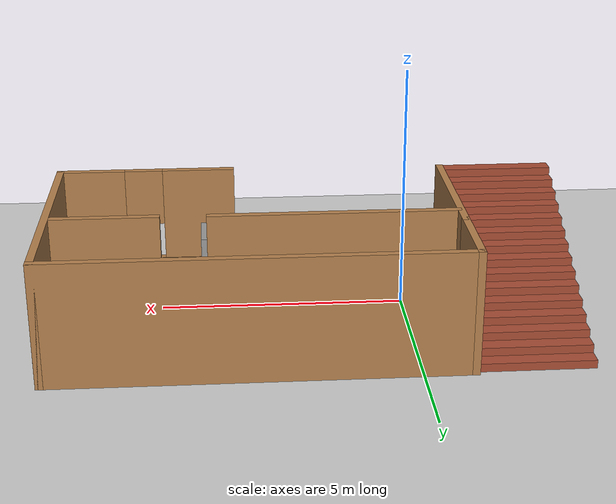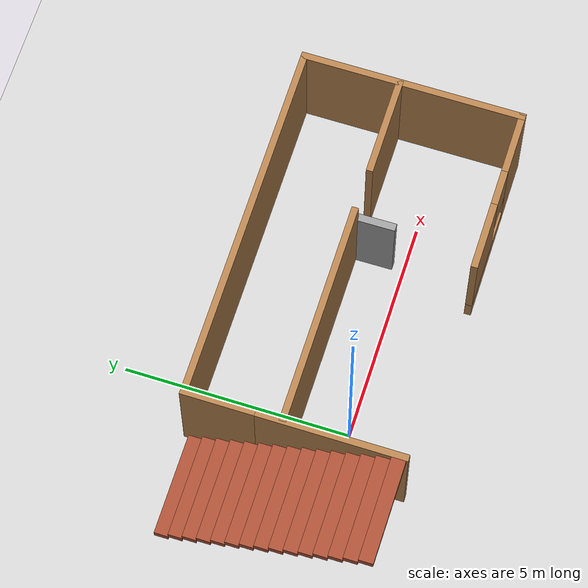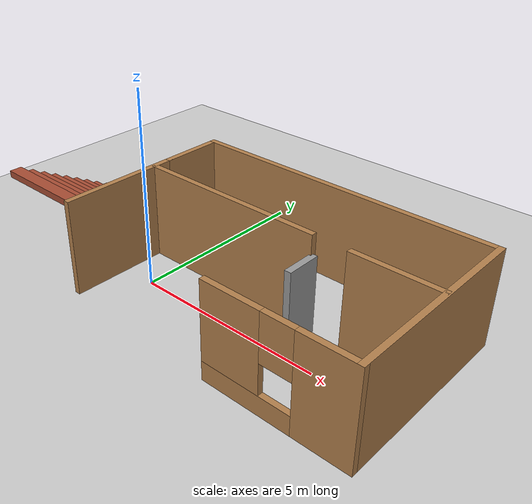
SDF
<sdf version="1.7">
 <world name="default">
  <light name="sun" type="directional">
   <pose>0 0 10 0 -0 0</pose>
   <diffuse>0.8 0.8 0.8 1</diffuse>
   <specular>0.2 0.2 0.2 1</specular>
   <attenuation>
    <range>1000</range>
    <constant>0.9</constant>
    <linear>0.01</linear>
    <quadratic>0.001</quadratic>
   </attenuation>
   <direction>-0.5 0.1 -0.9</direction>
   <spot><inner_angle>0</inner_angle><outer_angle>0</outer_angle><falloff>0</falloff></spot>
  </light>
  <model name="ground_plane">
   <static>1</static>
   <link name="link">
    <collision name="collision">
     <geometry><plane><normal>0 0 1</normal><size>100 100</size></plane></geometry>
     <surface><friction><ode><mu>100</mu><mu2>50</mu2></ode></friction></surface>
    </collision>
    <visual name="visual">
     <cast_shadows>0</cast_shadows>
     <geometry><plane><normal>0 0 1</normal><size>100 100</size></plane></geometry>
     <material>
      <script><uri>file://media/materials/scripts/gazebo.material</uri><name>Gazebo/Grey</name></script>
     </material>
    </visual>
   </link>
  </model>
  <gravity>0 0 -9.8</gravity>
  <magnetic_field>6e-06 2.3e-05 -4.2e-05</magnetic_field>
  <atmosphere type="adiabatic"/>
  <physics type="ode">
   <max_step_size>0.001</max_step_size>
   <real_time_factor>1</real_time_factor>
   <real_time_update_rate>1000</real_time_update_rate>
  </physics>
  <scene><ambient>0.4 0.4 0.4 1</ambient><background>0.7 0.7 0.7 1</background><shadows>1</shadows></scene>
  <spherical_coordinates>
   <surface_model>EARTH_WGS84</surface_model>
   <latitude_deg>0</latitude_deg>
   <longitude_deg>0</longitude_deg>
   <elevation>0</elevation>
   <heading_deg>0</heading_deg>
  </spherical_coordinates>
  <light name="user_point_light_0" type="point">
   <pose>0.317693 -1.24097 1 0 -0 0</pose>
   <diffuse>0.5 0.5 0.5 1</diffuse>
   <specular>0.1 0.1 0.1 1</specular>
   <attenuation>
    <range>20</range>
    <constant>0.5</constant>
    <linear>0.01</linear>
    <quadratic>0.001</quadratic>
   </attenuation>
   <cast_shadows>0</cast_shadows>
   <direction>0 0 -1</direction>
  </light>
  <model name="home">
   <pose>1.94437 0.835201 0 0 -0 0</pose>
   <link name="Door_0">
    <collision name="Door_0_Collision">
     <geometry><box><size>0.9 0.17 2</size></box></geometry>
     <pose>0 0 1 0 -0 0</pose>
    </collision>
    <visual name="Door_0_Visual">
     <pose>0 0 1 0 -0 0</pose>
     <geometry><box><size>0.9 0.17 2</size></box></geometry>
     <material>
      <script><uri>file://media/materials/scripts/gazebo.material</uri><name>Gazebo/Grey</name></script>
     </material>
    </visual>
    <pose>2.10333 -0.119323 0 0 -0 -1.56252</pose>
   </link>
   <link name="Stairs_0">
    <visual name="Stairs_0_Visual_0">
     <pose>-4.12466 2.2344 0.083333 0 -0 0</pose>
     <geometry><box><size>2.26233 0.313433 0.166667</size></box></geometry>
     <material>
      <script><uri>file://media/materials/scripts/gazebo.material</uri><name>Gazebo/Bricks</name></script>
      <ambient>0.435294 0.796078 0.67451 1</ambient>
     </material>
     <meta><layer>0</layer></meta>
    </visual>
    <collision name="Stairs_0_Collision_0">
     <geometry><box><size>2.26233 0.313433 0.166667</size></box></geometry>
     <pose>-4.12466 2.2344 0.083333 0 -0 0</pose>
    </collision>
    <visual name="Stairs_0_Visual_1">
     <pose>-4.12466 1.92097 0.25 0 -0 0</pose>
     <geometry><box><size>2.26233 0.313433 0.166667</size></box></geometry>
     <material>
      <script><uri>file://media/materials/scripts/gazebo.material</uri><name>Gazebo/Bricks</name></script>
      <ambient>0.435294 0.796078 0.67451 1</ambient>
     </material>
     <meta><layer>0</layer></meta>
    </visual>
    <collision name="Stairs_0_Collision_1">
     <geometry><box><size>2.26233 0.313433 0.166667</size></box></geometry>
     <pose>-4.12466 1.92097 0.25 0 -0 0</pose>
    </collision>
    <visual name="Stairs_0_Visual_2">
     <pose>-4.12466 1.60753 0.416667 0 -0 0</pose>
     <geometry><box><size>2.26233 0.313433 0.166667</size></box></geometry>
     <material>
      <script><uri>file://media/materials/scripts/gazebo.material</uri><name>Gazebo/Bricks</name></script>
      <ambient>0.435294 0.796078 0.67451 1</ambient>
     </material>
     <meta><layer>0</layer></meta>
    </visual>
    <collision name="Stairs_0_Collision_2">
     <geometry><box><size>2.26233 0.313433 0.166667</size></box></geometry>
     <pose>-4.12466 1.60753 0.416667 0 -0 0</pose>
    </collision>
    <visual name="Stairs_0_Visual_3">
     <pose>-4.12466 1.2941 0.583333 0 -0 0</pose>
     <geometry><box><size>2.26233 0.313433 0.166667</size></box></geometry>
     <material>
      <script><uri>file://media/materials/scripts/gazebo.material</uri><name>Gazebo/Bricks</name></script>
      <ambient>0.435294 0.796078 0.67451 1</ambient>
     </material>
     <meta><layer>0</layer></meta>
    </visual>
    <collision name="Stairs_0_Collision_3">
     <geometry><box><size>2.26233 0.313433 0.166667</size></box></geometry>
     <pose>-4.12466 1.2941 0.583333 0 -0 0</pose>
    </collision>
    <visual name="Stairs_0_Visual_4">
     <pose>-4.12466 0.980668 0.75 0 -0 0</pose>
     <geometry><box><size>2.26233 0.313433 0.166667</size></box></geometry>
     <material>
      <script><uri>file://media/materials/scripts/gazebo.material</uri><name>Gazebo/Bricks</name></script>
      <ambient>0.435294 0.796078 0.67451 1</ambient>
     </material>
     <meta><layer>0</layer></meta>
    </visual>
    <collision name="Stairs_0_Collision_4">
     <geometry><box><size>2.26233 0.313433 0.166667</size></box></geometry>
     <pose>-4.12466 0.980668 0.75 0 -0 0</pose>
    </collision>
    <visual name="Stairs_0_Visual_5">
     <pose>-4.12466 0.667235 0.916667 0 -0 0</pose>
     <geometry><box><size>2.26233 0.313433 0.166667</size></box></geometry>
     <material>
      <script><uri>file://media/materials/scripts/gazebo.material</uri><name>Gazebo/Bricks</name></script>
      <ambient>0.435294 0.796078 0.67451 1</ambient>
     </material>
     <meta><layer>0</layer></meta>
    </visual>
    <collision name="Stairs_0_Collision_5">
     <geometry><box><size>2.26233 0.313433 0.166667</size></box></geometry>
     <pose>-4.12466 0.667235 0.916667 0 -0 0</pose>
    </collision>
    <visual name="Stairs_0_Visual_6">
     <pose>-4.12466 0.353802 1.08333 0 -0 0</pose>
     <geometry><box><size>2.26233 0.313433 0.166667</size></box></geometry>
     <material>
      <script><uri>file://media/materials/scripts/gazebo.material</uri><name>Gazebo/Bricks</name></script>
      <ambient>0.435294 0.796078 0.67451 1</ambient>
     </material>
     <meta><layer>0</layer></meta>
    </visual>
    <collision name="Stairs_0_Collision_6">
     <geometry><box><size>2.26233 0.313433 0.166667</size></box></geometry>
     <pose>-4.12466 0.353802 1.08333 0 -0 0</pose>
    </collision>
    <visual name="Stairs_0_Visual_7">
     <pose>-4.12466 0.040369 1.25 0 -0 0</pose>
     <geometry><box><size>2.26233 0.313433 0.166667</size></box></geometry>
     <material>
      <script><uri>file://media/materials/scripts/gazebo.material</uri><name>Gazebo/Bricks</name></script>
      <ambient>0.435294 0.796078 0.67451 1</ambient>
     </material>
     <meta><layer>0</layer></meta>
    </visual>
    <collision name="Stairs_0_Collision_7">
     <geometry><box><size>2.26233 0.313433 0.166667</size></box></geometry>
     <pose>-4.12466 0.040369 1.25 0 -0 0</pose>
    </collision>
    <visual name="Stairs_0_Visual_8">
     <pose>-4.12466 -0.273063 1.41667 0 -0 0</pose>
     <geometry><box><size>2.26233 0.313433 0.166667</size></box></geometry>
     <material>
      <script><uri>file://media/materials/scripts/gazebo.material</uri><name>Gazebo/Bricks</name></script>
      <ambient>0.435294 0.796078 0.67451 1</ambient>
     </material>
     <meta><layer>0</layer></meta>
    </visual>
    <collision name="Stairs_0_Collision_8">
     <geometry><box><size>2.26233 0.313433 0.166667</size></box></geometry>
     <pose>-4.12466 -0.273063 1.41667 0 -0 0</pose>
    </collision>
    <visual name="Stairs_0_Visual_9">
     <pose>-4.12466 -0.586496 1.58333 0 -0 0</pose>
     <geometry><box><size>2.26233 0.313433 0.166667</size></box></geometry>
     <material>
      <script><uri>file://media/materials/scripts/gazebo.material</uri><name>Gazebo/Bricks</name></script>
      <ambient>0.435294 0.796078 0.67451 1</ambient>
     </material>
     <meta><layer>0</layer></meta>
    </visual>
    <collision name="Stairs_0_Collision_9">
     <geometry><box><size>2.26233 0.313433 0.166667</size></box></geometry>
     <pose>-4.12466 -0.586496 1.58333 0 -0 0</pose>
    </collision>
    <visual name="Stairs_0_Visual_10">
     <pose>-4.12466 -0.899929 1.75 0 -0 0</pose>
     <geometry><box><size>2.26233 0.313433 0.166667</size></box></geometry>
     <material>
      <script><uri>file://media/materials/scripts/gazebo.material</uri><name>Gazebo/Bricks</name></script>
      <ambient>0.435294 0.796078 0.67451 1</ambient>
     </material>
     <meta><layer>0</layer></meta>
    </visual>
    <collision name="Stairs_0_Collision_10">
     <geometry><box><size>2.26233 0.313433 0.166667</size></box></geometry>
     <pose>-4.12466 -0.899929 1.75 0 -0 0</pose>
    </collision>
    <visual name="Stairs_0_Visual_11">
     <pose>-4.12466 -1.21336 1.91667 0 -0 0</pose>
     <geometry><box><size>2.26233 0.313433 0.166667</size></box></geometry>
     <material>
      <script><uri>file://media/materials/scripts/gazebo.material</uri><name>Gazebo/Bricks</name></script>
      <ambient>0.435294 0.796078 0.67451 1</ambient>
     </material>
     <meta><layer>0</layer></meta>
    </visual>
    <collision name="Stairs_0_Collision_11">
     <geometry><box><size>2.26233 0.313433 0.166667</size></box></geometry>
     <pose>-4.12466 -1.21336 1.91667 0 -0 0</pose>
    </collision>
    <visual name="Stairs_0_Visual_12">
     <pose>-4.12466 -1.52679 2.08333 0 -0 0</pose>
     <geometry><box><size>2.26233 0.313433 0.166667</size></box></geometry>
     <material>
      <script><uri>file://media/materials/scripts/gazebo.material</uri><name>Gazebo/Bricks</name></script>
      <ambient>0.435294 0.796078 0.67451 1</ambient>
     </material>
     <meta><layer>0</layer></meta>
    </visual>
    <collision name="Stairs_0_Collision_12">
     <geometry><box><size>2.26233 0.313433 0.166667</size></box></geometry>
     <pose>-4.12466 -1.52679 2.08333 0 -0 0</pose>
    </collision>
    <visual name="Stairs_0_Visual_13">
     <pose>-4.12466 -1.84023 2.25 0 -0 0</pose>
     <geometry><box><size>2.26233 0.313433 0.166667</size></box></geometry>
     <material>
      <script><uri>file://media/materials/scripts/gazebo.material</uri><name>Gazebo/Bricks</name></script>
      <ambient>0.435294 0.796078 0.67451 1</ambient>
     </material>
     <meta><layer>0</layer></meta>
    </visual>
    <collision name="Stairs_0_Collision_13">
     <geometry><box><size>2.26233 0.313433 0.166667</size></box></geometry>
     <pose>-4.12466 -1.84023 2.25 0 -0 0</pose>
    </collision>
    <visual name="Stairs_0_Visual_14">
     <pose>-4.12466 -2.15366 2.41667 0 -0 0</pose>
     <geometry><box><size>2.26233 0.313433 0.166667</size></box></geometry>
     <material>
      <script><uri>file://media/materials/scripts/gazebo.material</uri><name>Gazebo/Bricks</name></script>
      <ambient>0.435294 0.796078 0.67451 1</ambient>
     </material>
     <meta><layer>0</layer></meta>
    </visual>
    <collision name="Stairs_0_Collision_14">
     <geometry><box><size>2.26233 0.313433 0.166667</size></box></geometry>
     <pose>-4.12466 -2.15366 2.41667 0 -0 0</pose>
    </collision>
   </link>
   <link name="Wall_0">
    <collision name="Wall_0_Collision">
     <geometry><box><size>3.25 0.15 2.5</size></box></geometry>
     <pose>0 0 1.25 0 -0 0</pose>
    </collision>
    <visual name="Wall_0_Visual">
     <pose>0 0 1.25 0 -0 0</pose>
     <geometry><box><size>3.25 0.15 2.5</size></box></geometry>
     <material>
      <script><uri>file://media/materials/scripts/gazebo.material</uri><name>Gazebo/Wood</name></script>
      <ambient>0.996078 0.47451 0.0196078 1</ambient>
     </material>
     <meta><layer>0</layer></meta>
    </visual>
    <pose>-2.91918 -0.725 0 0 -0 1.5708</pose>
   </link>
   <link name="Wall_11">
    <collision name="Wall_11_Collision">
     <geometry><box><size>5 0.15 2.5</size></box></geometry>
     <pose>0 0 1.25 0 -0 0</pose>
    </collision>
    <visual name="Wall_11_Visual">
     <pose>0 0 1.25 0 -0 0</pose>
     <geometry><box><size>5 0.15 2.5</size></box></geometry>
     <material>
      <script><uri>file://media/materials/scripts/gazebo.material</uri><name>Gazebo/Wood</name></script>
      <ambient>0.996078 0.47451 0.0196078 1</ambient>
     </material>
     <meta><layer>0</layer></meta>
    </visual>
    <pose>-0.429726 0.321731 0 0 -0 0</pose>
   </link>
   <link name="Wall_13">
    <collision name="Wall_13_Collision">
     <geometry><box><size>2.25 0.15 2.5</size></box></geometry>
     <pose>0 0 1.25 0 -0 0</pose>
    </collision>
    <visual name="Wall_13_Visual">
     <pose>0 0 1.25 0 -0 0</pose>
     <geometry><box><size>2.25 0.15 2.5</size></box></geometry>
     <material>
      <script><uri>file://media/materials/scripts/gazebo.material</uri><name>Gazebo/Wood</name></script>
      <ambient>0.996078 0.47451 0.0196078 1</ambient>
     </material>
     <meta><layer>0</layer></meta>
    </visual>
    <pose>4.09627 0.291314 0 0 -0 0</pose>
   </link>
   <link name="Wall_4">
    <collision name="Wall_4_Collision">
     <geometry><box><size>1.75 0.15 2.5</size></box></geometry>
     <pose>0 0 1.25 0 -0 0</pose>
    </collision>
    <visual name="Wall_4_Visual">
     <pose>0 0 1.25 0 -0 0</pose>
     <geometry><box><size>1.75 0.15 2.5</size></box></geometry>
     <material>
      <script><uri>file://media/materials/scripts/gazebo.material</uri><name>Gazebo/Wood</name></script>
      <ambient>0.996078 0.47451 0.0196078 1</ambient>
     </material>
     <meta><layer>0</layer></meta>
    </visual>
    <pose>-2.91918 1.625 0 0 -0 1.5708</pose>
   </link>
   <link name="Wall_5">
    <collision name="Wall_5_Collision">
     <geometry><box><size>8.25 0.15 2.5</size></box></geometry>
     <pose>0 0 1.25 0 -0 0</pose>
    </collision>
    <visual name="Wall_5_Visual">
     <pose>0 0 1.25 0 -0 0</pose>
     <geometry><box><size>8.25 0.15 2.5</size></box></geometry>
     <material>
      <script><uri>file://media/materials/scripts/gazebo.material</uri><name>Gazebo/Wood</name></script>
      <ambient>0.996078 0.47451 0.0196078 1</ambient>
     </material>
     <meta><layer>0</layer></meta>
    </visual>
    <pose>1.13082 2.425 0 0 -0 0</pose>
   </link>
   <link name="Wall_6">
    <collision name="Wall_6_Collision">
     <geometry><box><size>5 0.15 2.5</size></box></geometry>
     <pose>0 0 1.25 0 -0 0</pose>
    </collision>
    <visual name="Wall_6_Visual">
     <pose>0 0 1.25 0 -0 0</pose>
     <geometry><box><size>5 0.15 2.5</size></box></geometry>
     <material>
      <script><uri>file://media/materials/scripts/gazebo.material</uri><name>Gazebo/Wood</name></script>
      <ambient>0.996078 0.47451 0.0196078 1</ambient>
     </material>
     <meta><layer>0</layer></meta>
    </visual>
    <pose>5.18082 0 0 0 -0 -1.5708</pose>
   </link>
   <link name="Wall_7">
    <pose>3.38082 -2.425 0 0 -0 3.14159</pose>
    <visual name="Wall_7_Visual_0">
     <pose>-1.16033 0 1.25 0 -0 0</pose>
     <geometry><box><size>1.42933 0.15 2.5</size></box></geometry>
     <material>
      <script><uri>file://media/materials/scripts/gazebo.material</uri><name>Gazebo/Wood</name></script>
      <ambient>0.996078 0.47451 0.0196078 1</ambient>
     </material>
     <meta><layer>0</layer></meta>
    </visual>
    <collision name="Wall_7_Collision_0">
     <geometry><box><size>1.42933 0.15 2.5</size></box></geometry>
     <pose>-1.16033 0 1.25 0 -0 0</pose>
    </collision>
    <visual name="Wall_7_Visual_1">
     <pose>0.714666 0 0.25 0 -0 0</pose>
     <geometry><box><size>2.32067 0.15 0.5</size></box></geometry>
     <material>
      <script><uri>file://media/materials/scripts/gazebo.material</uri><name>Gazebo/Wood</name></script>
      <ambient>0.996078 0.47451 0.0196078 1</ambient>
     </material>
     <meta><layer>0</layer></meta>
    </visual>
    <collision name="Wall_7_Collision_1">
     <geometry><box><size>2.32067 0.15 0.5</size></box></geometry>
     <pose>0.714666 0 0.25 0 -0 0</pose>
    </collision>
    <visual name="Wall_7_Visual_2">
     <pose>1.11467 0 1.5 0 -0 0</pose>
     <geometry><box><size>1.52067 0.15 2</size></box></geometry>
     <material>
      <script><uri>file://media/materials/scripts/gazebo.material</uri><name>Gazebo/Wood</name></script>
      <ambient>0.996078 0.47451 0.0196078 1</ambient>
     </material>
     <meta><layer>0</layer></meta>
    </visual>
    <collision name="Wall_7_Collision_2">
     <geometry><box><size>1.52067 0.15 2</size></box></geometry>
     <pose>1.11467 0 1.5 0 -0 0</pose>
    </collision>
    <visual name="Wall_7_Visual_3">
     <pose>-0.045669 0 1.9 0 -0 0</pose>
     <geometry><box><size>0.8 0.15 1.2</size></box></geometry>
     <material>
      <script><uri>file://media/materials/scripts/gazebo.material</uri><name>Gazebo/Wood</name></script>
      <ambient>0.996078 0.47451 0.0196078 1</ambient>
     </material>
     <meta><layer>0</layer></meta>
    </visual>
    <collision name="Wall_7_Collision_3">
     <geometry><box><size>0.8 0.15 1.2</size></box></geometry>
     <pose>-0.045669 0 1.9 0 -0 0</pose>
    </collision>
   </link>
   <static>1</static>
  </model>
 </world>
</sdf>
